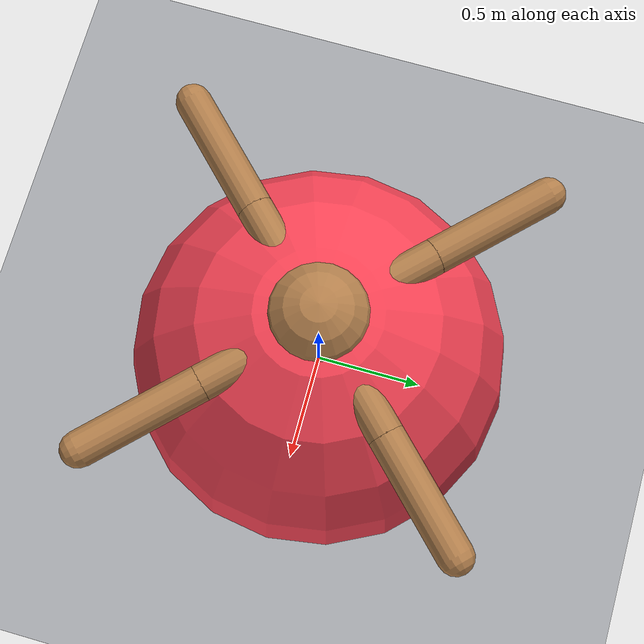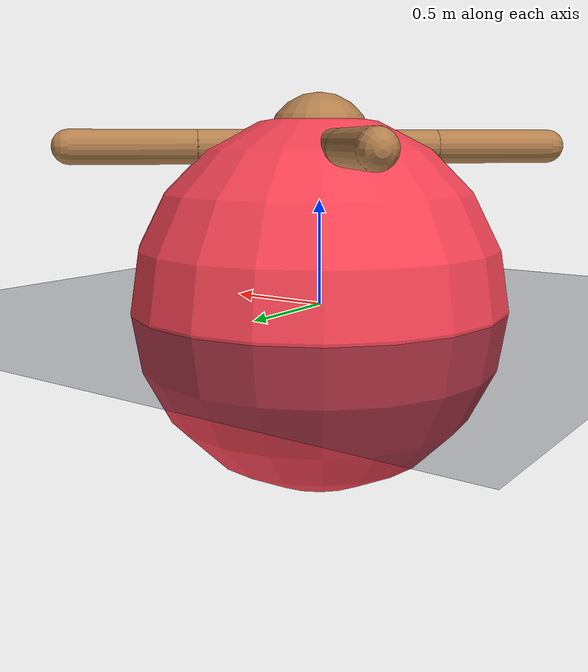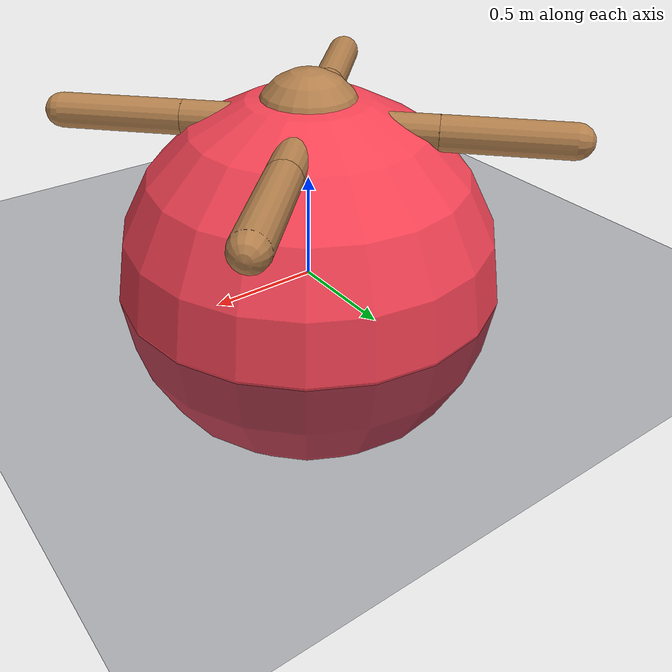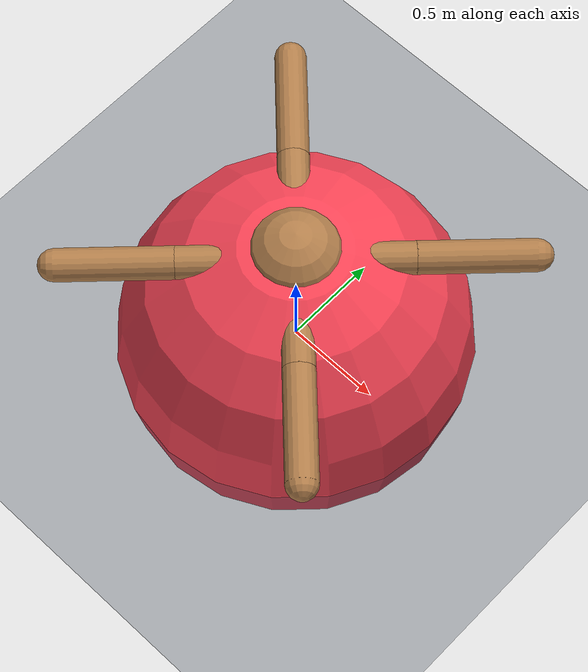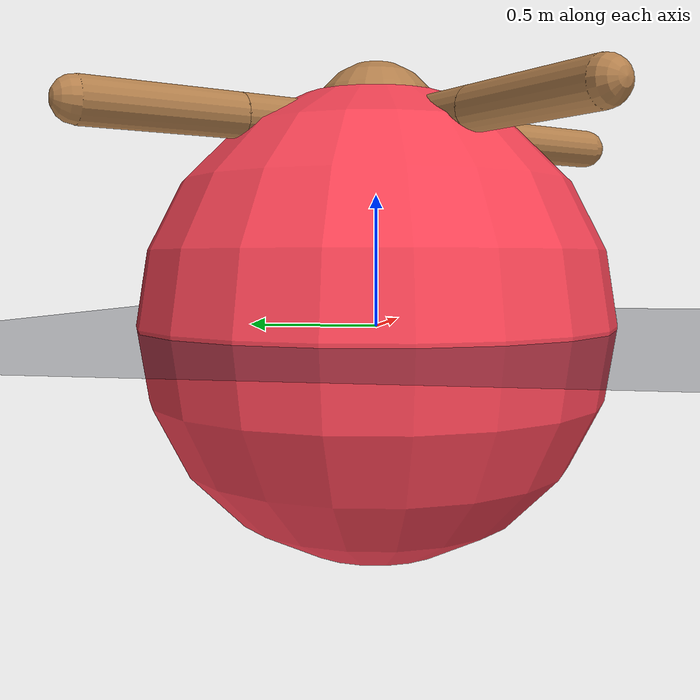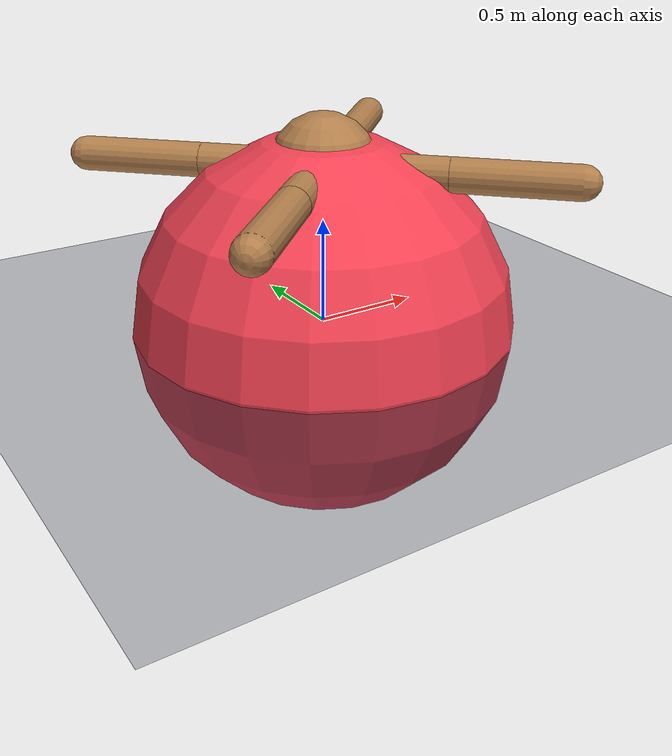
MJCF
<mujoco model="ant">
    <compiler inertiafromgeom="true" angle="degree" coordinate="local"/>

    <option timestep="0.02" iterations="4"/>

    <custom>
        <!-- brax custom params -->
        <!-- qpos layout: ant_root(7) + 8_hinges(8) + ball_root(7) + target_slides(2) = 24 -->
        <numeric data="0.0 0.0 0.55 1.0 0.0 0.0 0.0 0.0 1.0 0.0 -1.0 0.0 -1.0 0.0 1.0 0.0 0.0 0.5 1.0 0.0 0.0 0.0 0.0 0.0" name="init_qpos"/>
        <numeric data="1000" name="constraint_limit_stiffness"/>
        <numeric data="4000" name="constraint_stiffness"/>
        <numeric data="10" name="constraint_ang_damping"/>
        <numeric data="20" name="constraint_vel_damping"/>
        <numeric data="0.5" name="joint_scale_pos"/>
        <numeric data="0.2" name="joint_scale_ang"/>
        <numeric data="0.0" name="ang_damping"/>
        <numeric data="1" name="spring_mass_scale"/>
        <numeric data="1" name="spring_inertia_scale"/>
        <numeric data="15" name="solver_maxls"/>
    </custom>

    <default>
        <joint limited="true" armature="1" damping="1"/>
        <geom condim="3" conaffinity="0" margin="0.01" friction="1 0.5 0.5" solref=".02 1" solimp=".8 .8 .01" density="5.0" material="self"/>
    </default>

    <asset>
        <texture type="skybox" builtin="gradient" width="100" height="100" rgb1="1 1 1" rgb2="0 0 0"/>
        <texture name="grid" type="2d" builtin="checker" rgb1=".08 .11 .16" rgb2=".15 .18 .25" width="300" height="300"/>
        <texture name="ball" builtin="checker" mark="cross" width="151" height="151" rgb1="0.1 0.1 0.1" rgb2="0.9 0.9 0.9" markrgb="1 1 1"/>
        <material name="grid" texture="grid" texrepeat="1 1" texuniform="true"/>
        <material name="self" rgba=".7 .5 .3 1"/>
        <material name="wall" rgba="1 1 1 1"/>
        <material name="ball" texture="ball"/>
        <material name="target" rgba="0.96 0.26 0.33 1"/>
    </asset>

    <worldbody>
        <light name="global" directional="true" cutoff="100" ambient=".2 .2 .2" exponent="1" diffuse="1 1 1" specular=".1 .1 .1" pos="0 0 1.3" dir="-0 0 -1.3"/>
        <geom name="floor" type="plane" conaffinity="1" size="100 100 .2" material="grid"/>
        <body name="torso" pos="0 0 0.75">
            <camera name="back" pos="0 -2.5 5" xyaxes="1 0 0 0 2 1" mode="trackcom"/>
            <geom name="torso_geom" type="sphere" size="0.25" pos="0 0 0"/>
            <joint name="root" type="free" limited="false" pos="0 0 0" axis="0 0 1" margin="0.01" armature="0" damping="0"/>
            <light name="torso_light" pos="0 0 8" mode="trackcom"/>
            <body name="front_left_leg" pos="0 0 0">
                <geom name="aux_1_geom" type="capsule" size="0.08" fromto="0.0 0.0 0.0 0.2 0.2 0.0"/>
                <body name="aux_1" pos="0.2 0.2 0">
                    <joint name="hip_1" type="hinge" pos="0.0 0.0 0.0" axis="0 0 1" range="-30 30"/>
                    <geom name="left_leg_geom" type="capsule" size="0.08" fromto="0.0 0.0 0.0 0.2 0.2 0.0"/>
                    <body pos="0.2 0.2 0">
                        <joint name="ankle_1" type="hinge" pos="0.0 0.0 0.0" axis="-1 1 0" range="30 70"/>
                        <geom name="left_ankle_geom" type="capsule" size="0.08" fromto="0.0 0.0 0.0 0.4 0.4 0.0"/>
                    </body>
                </body>
            </body>
            <body name="front_right_leg" pos="0 0 0">
                <geom name="aux_2_geom" type="capsule" size="0.08" fromto="0.0 0.0 0.0 -0.2 0.2 0.0"/>
                <body name="aux_2" pos="-0.2 0.2 0">
                    <joint name="hip_2" type="hinge" pos="0.0 0.0 0.0" axis="0 0 1" range="-30 30"/>
                    <geom name="right_leg_geom" type="capsule" size="0.08" fromto="0.0 0.0 0.0 -0.2 0.2 0.0"/>
                    <body pos="-0.2 0.2 0">
                        <joint name="ankle_2" type="hinge" pos="0.0 0.0 0.0" axis="1 1 0" range="-70 -30"/>
                        <geom name="right_ankle_geom" type="capsule" size="0.08" fromto="0.0 0.0 0.0 -0.4 0.4 0.0"/>
                    </body>
                </body>
            </body>
            <body name="back_leg" pos="0 0 0">
                <geom name="aux_3_geom" type="capsule" size="0.08" fromto="0.0 0.0 0.0 -0.2 -0.2 0.0"/>
                <body name="aux_3" pos="-0.2 -0.2 0">
                    <joint name="hip_3" type="hinge" pos="0.0 0.0 0.0" axis="0 0 1" range="-30 30"/>
                    <geom name="back_leg_geom" type="capsule" size="0.08" fromto="0.0 0.0 0.0 -0.2 -0.2 0.0"/>
                    <body pos="-0.2 -0.2 0">
                        <joint name="ankle_3" type="hinge" pos="0.0 0.0 0.0" axis="-1 1 0" range="-70 -30"/>
                        <geom name="third_ankle_geom" type="capsule" size="0.08" fromto="0.0 0.0 0.0 -0.4 -0.4 0.0"/>
                    </body>
                </body>
            </body>
            <body name="right_back_leg" pos="0 0 0">
                <geom name="aux_4_geom" type="capsule" size="0.08" fromto="0.0 0.0 0.0 0.2 -0.2 0.0"/>
                <body name="aux_4" pos="0.2 -0.2 0">
                    <joint name="hip_4" type="hinge" pos="0.0 0.0 0.0" axis="0 0 1" range="-30 30"/>
                    <geom name="rightback_leg_geom" type="capsule" size="0.08" fromto="0.0 0.0 0.0 0.2 -0.2 0.0"/>
                    <body pos="0.2 -0.2 0">
                        <joint name="ankle_4" type="hinge" pos="0.0 0.0 0.0" axis="1 1 0" range="30 70"/>
                        <geom name="fourth_ankle_geom" type="capsule" size="0.08" fromto="0.0 0.0 0.0 0.4 -0.4 0.0"/>
                    </body>
                </body>
            </body>
        </body>

        <body name="ball" pos="0 0 0.5">
            <freejoint name="ball_root"/>
            <geom name="ball" size=".25" material="ball" conaffinity="1" condim="6"/>
            <light name="ball_light" pos="0 0 4" mode="trackcom"/>
        </body>

        <!-- Non-physical target marker for GCRL goal specification.
             Two slide joints at the end of q/qd, stripped by _get_obs via q[:-2]. -->
        <body name="target" pos="0 0 0.01">
            <joint armature="0" axis="1 0 0" damping="0" limited="true" name="target_x" pos="0 0 0" range="-100 100" stiffness="0" type="slide"/>
            <joint armature="0" axis="0 1 0" damping="0" limited="true" name="target_y" pos="0 0 0" range="-100 100" stiffness="0" type="slide"/>
            <geom conaffinity="0" contype="0" name="target" pos="0 0 0" size=".9" type="sphere" mass="1.0" material="target"/>
        </body>
    </worldbody>

    <actuator>
        <motor ctrllimited="true" ctrlrange="-1.0 1.0" joint="hip_4" gear="30"/>
        <motor ctrllimited="true" ctrlrange="-1.0 1.0" joint="ankle_4" gear="30"/>
        <motor ctrllimited="true" ctrlrange="-1.0 1.0" joint="hip_1" gear="30"/>
        <motor ctrllimited="true" ctrlrange="-1.0 1.0" joint="ankle_1" gear="30"/>
        <motor ctrllimited="true" ctrlrange="-1.0 1.0" joint="hip_2" gear="30"/>
        <motor ctrllimited="true" ctrlrange="-1.0 1.0" joint="ankle_2" gear="30"/>
        <motor ctrllimited="true" ctrlrange="-1.0 1.0" joint="hip_3" gear="30"/>
        <motor ctrllimited="true" ctrlrange="-1.0 1.0" joint="ankle_3" gear="30"/>
    </actuator>
</mujoco>
